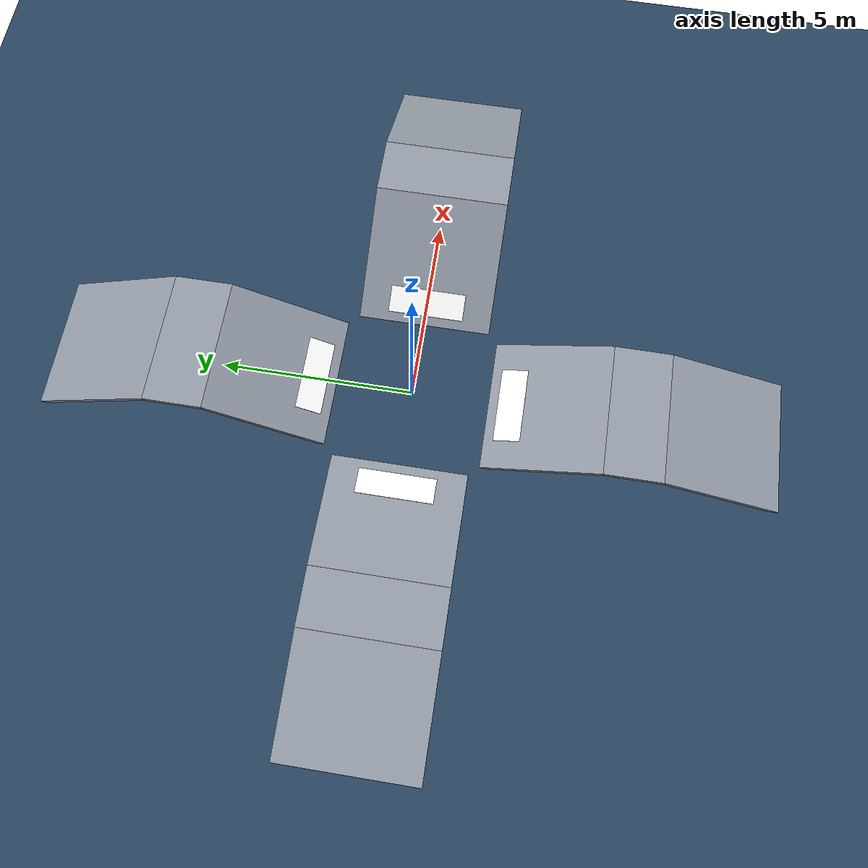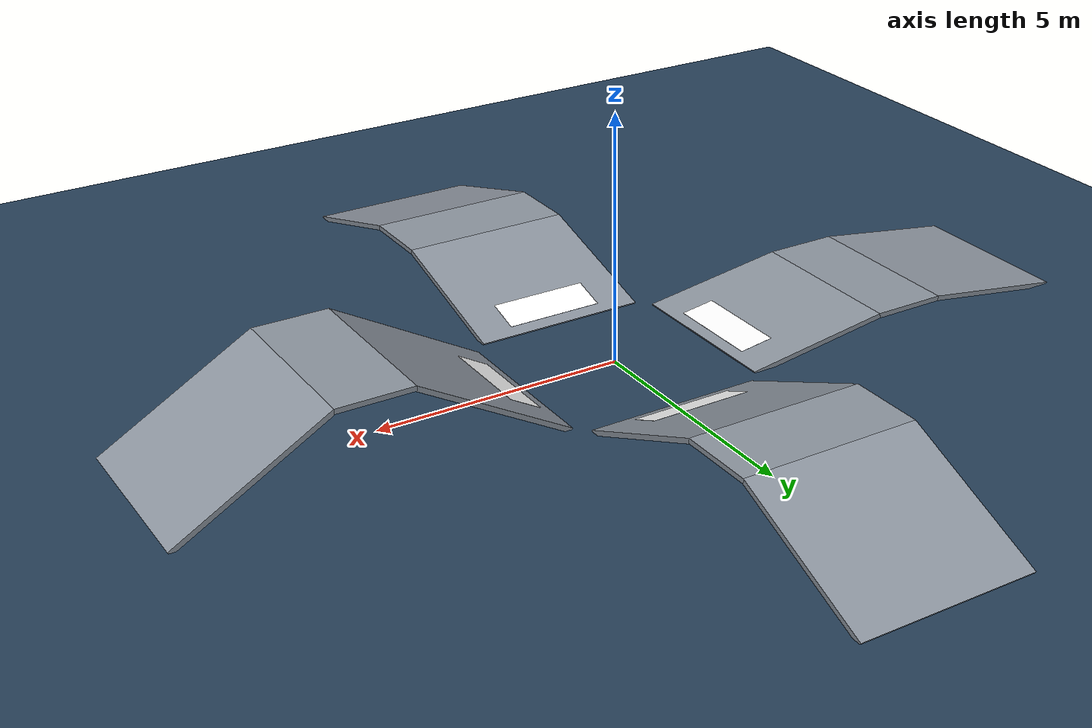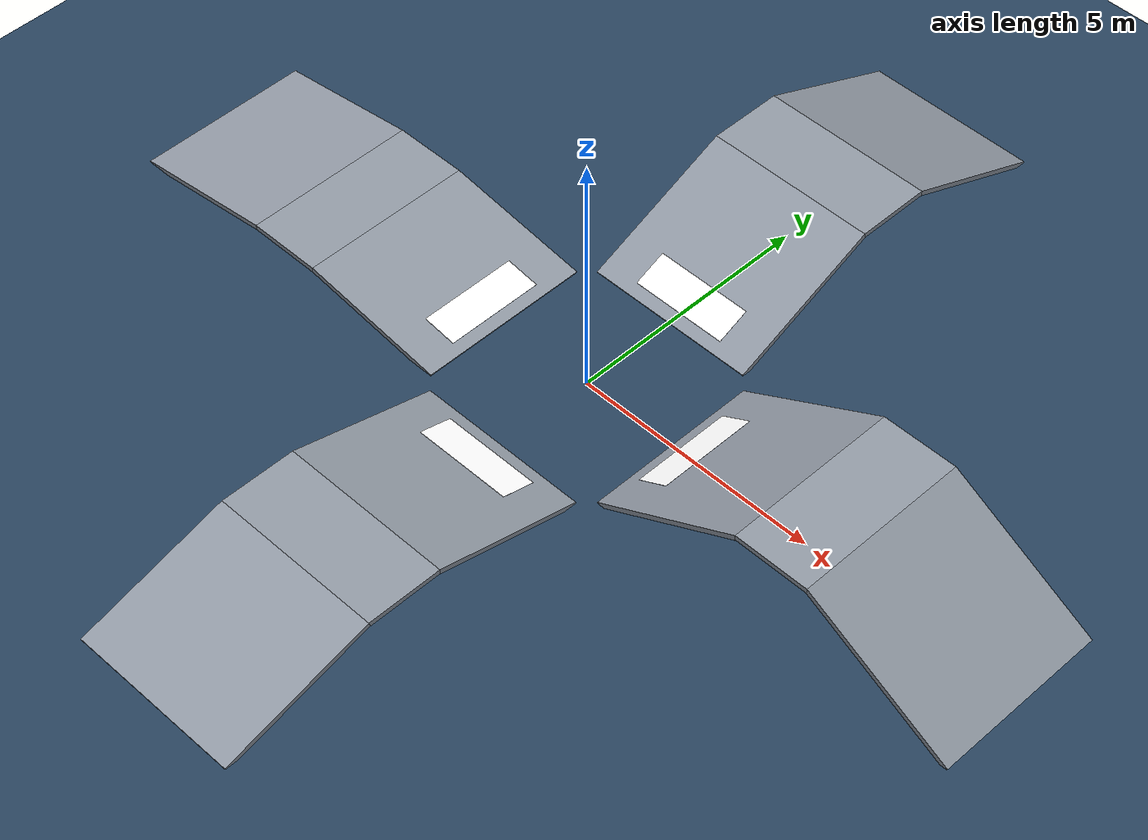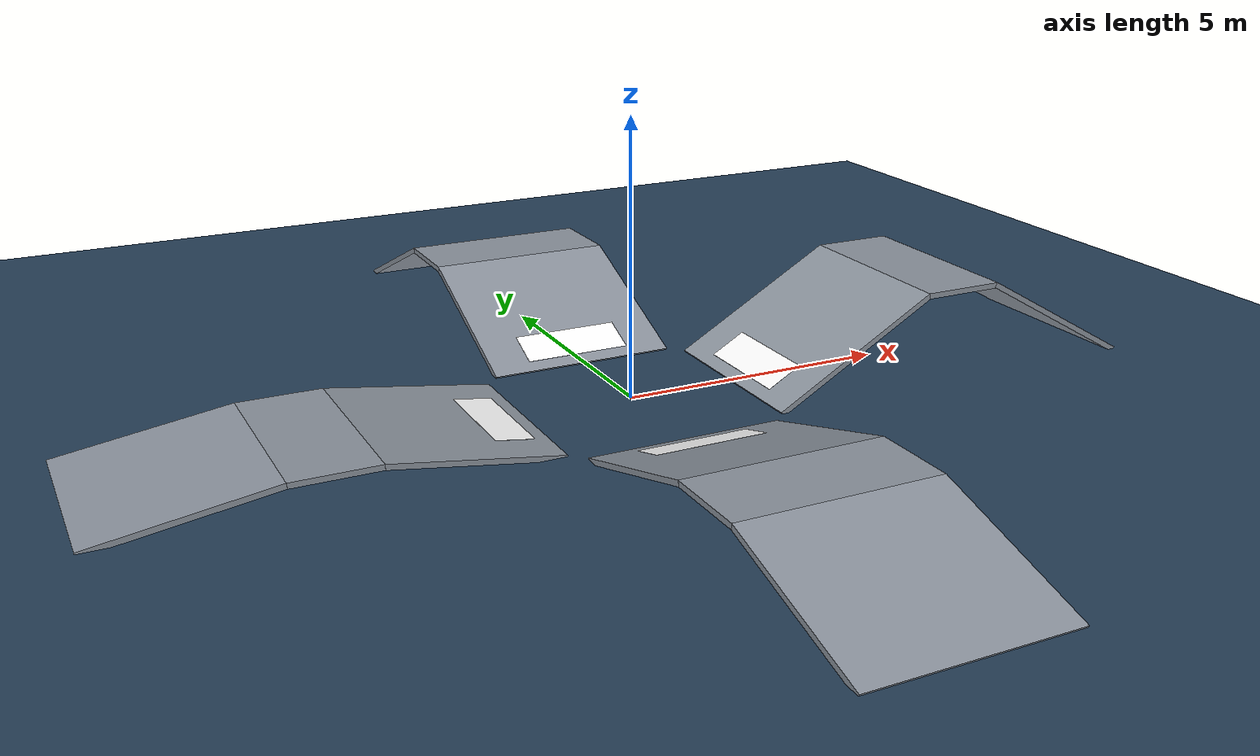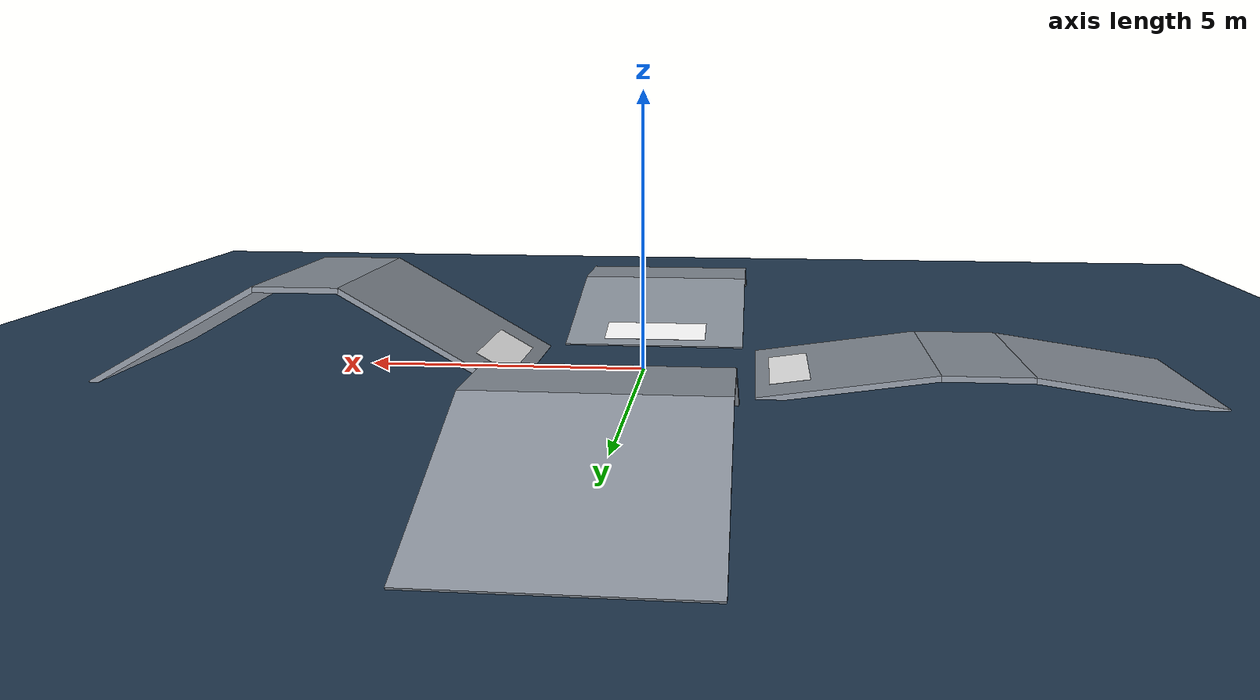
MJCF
<?xml version="1.0" encoding="utf-8"?>
<mujoco model="map_cross_slope">
  <statistic center="0 0 0.1" extent="0.8" />
  <visual>
    <headlight diffuse="0.6 0.6 0.6" ambient="0.3 0.3 0.3" specular="0 0 0" />
    <rgba haze="0.15 0.25 0.35 1" />
    <global azimuth="135" elevation="-25" />
    <quality shadowsize="4096" />
  </visual>
<asset>
    <material name="terrain" rgba="0.55 0.58 0.62 1" reflectance="0.05" />
    <texture type="skybox" builtin="gradient" rgb1="0.3 0.5 0.7" rgb2="0 0 0" width="512" height="3072" />
    <texture type="2d" name="groundplane" builtin="checker" mark="edge" rgb1="0.2 0.3 0.4" rgb2="0.1 0.2 0.3" markrgb="0.8 0.8 0.8" width="300" height="300" />
    <material name="groundplane" texture="groundplane" texuniform="true" texrepeat="5 5" reflectance="0.2" />
<texture name="tex_label_1" type="2d" file="./imgs/label_1.png" />
    <material name="mat_label_1" texture="tex_label_1" specular="0" shininess="0" emission="1" texrepeat="1 1" rgba="1 1 1 1" />
    <texture name="tex_label_7" type="2d" file="./imgs/label_7.png" />
    <material name="mat_label_7" texture="tex_label_7" specular="0" shininess="0" emission="1" texrepeat="1 1" rgba="1 1 1 1" />
    <texture name="tex_label_10" type="2d" file="./imgs/label_10.png" />
    <material name="mat_label_10" texture="tex_label_10" specular="0" shininess="0" emission="1" texrepeat="1 1" rgba="1 1 1 1" />
    <texture name="tex_label_4" type="2d" file="./imgs/label_4.png" />
    <material name="mat_label_4" texture="tex_label_4" specular="0" shininess="0" emission="1" texrepeat="1 1" rgba="1 1 1 1" />
  </asset>
  <worldbody>
    <light pos="0 0 3" dir="0 0 -1" directional="true" castshadow="true" />
<geom name="floor" size="0 0 0.05" type="plane" material="groundplane" />
    <geom pos="-3.5072718512065544 1.8458756480250123e-16 0.1710316244452101" type="box" size="1.5161201304646015 1.75 0.05" quat="6.106936001461366e-17 0.07291258089041118 -4.464607940250726e-18 0.9973383355451144" material="terrain" />
    <geom pos="-2.593329632609217 7.266192354141525e-17 0.08924094950084102" type="box" size="1.0 0.35064935064935066 0.001" quat="0.7052247002012548 0.05155698038142243 0.05155698038142242 0.7052247002012547" contype="0" conaffinity="0" group="1" material="mat_label_1" rgba="1 1 1 1" />
    <geom pos="-5.75 4.592425496802575e-16 0.39100000000000007" type="box" size="0.75 1.75 0.05" quat="6.123233995736766e-17 0.0 0.0 1.0" material="terrain" />
    <geom pos="-7.992728148793446 7.338975345580137e-16 0.1710316244452101" type="box" size="1.5161201304646015 1.75 0.05" quat="6.106936001461366e-17 -0.07291258089041118 4.464607940250726e-18 0.9973383355451144" material="terrain" />
    <geom pos="9.305555860662829e-17 3.519712600750146 0.5975498817012911" type="box" size="1.6322047206156463 1.75 0.05" quat="0.69264030455464 0.1423004163959321 -0.14230041639593213 0.6926403045546399" material="terrain" />
    <geom pos="3.371531723015055e-17 2.5506129155545008 0.23838921373370156" type="box" size="1.0 0.35064935064935066 0.001" quat="0.9795413125474028 0.20124317879846595 0.0 0.0" contype="0" conaffinity="0" group="1" material="mat_label_7" rgba="1 1 1 1" />
    <geom pos="2.2962127484012875e-16 5.75 1.2369999999999999" type="box" size="0.75 1.75 0.05" quat="0.7071067811865476 0.0 0.0 0.7071067811865475" material="terrain" />
    <geom pos="3.661869910736292e-16 7.980287399249854 0.5975498817012911" type="box" size="1.6322047206156463 1.75 0.05" quat="0.69264030455464 -0.1423004163959321 0.14230041639593213 0.6926403045546399" material="terrain" />
    <geom pos="3.524760152200491 0.0 0.811561136490367" type="box" size="1.7265645079173844 1.75 0.05" quat="0.9666377993314406 0.0 -0.25614715478347516 0.0" material="terrain" />
    <geom pos="2.520275956027577 0.0 0.2988593809462753" type="box" size="1.0 0.35064935064935066 0.001" quat="0.6835161428585028 0.1811233901290355 -0.18112339012903547 -0.6835161428585027" contype="0" conaffinity="0" group="1" material="mat_label_10" rgba="1 1 1 1" />
    <geom pos="5.75 0.0 1.66" type="box" size="0.75 1.75 0.05" quat="1.0 0.0 0.0 0.0" material="terrain" />
    <geom pos="7.975239847799509 0.0 0.811561136490367" type="box" size="1.7265645079173844 1.75 0.05" quat="0.9666377993314406 0.0 0.25614715478347516 0.0" material="terrain" />
    <geom pos="9.269581606609379e-17 -3.5138375592151503 0.38395291939183823" type="box" size="1.5609689298637561 1.75 0.05" quat="0.7001681248391769 -0.09881597522258663 -0.09881597522258664 -0.7001681248391768" material="terrain" />
    <geom pos="3.5270529839894456e-17 -2.5760114649293357 0.16797259380613377" type="box" size="1.0 0.35064935064935066 0.001" quat="6.063148280875342e-17 8.557029219681535e-18 -0.13974689233890575 -0.9901872580889023" contype="0" conaffinity="0" group="1" material="mat_label_4" rgba="1 1 1 1" />
    <geom pos="2.2962127484012875e-16 -5.75 0.8140000000000001" type="box" size="0.75 1.75 0.05" quat="0.7071067811865476 0.0 0.0 -0.7071067811865475" material="terrain" />
    <geom pos="3.665467336141637e-16 -7.98616244078485 0.38395291939183823" type="box" size="1.5609689298637561 1.75 0.05" quat="0.7001681248391769 0.09881597522258663 0.09881597522258664 -0.7001681248391768" material="terrain" />
  </worldbody>
</mujoco>
